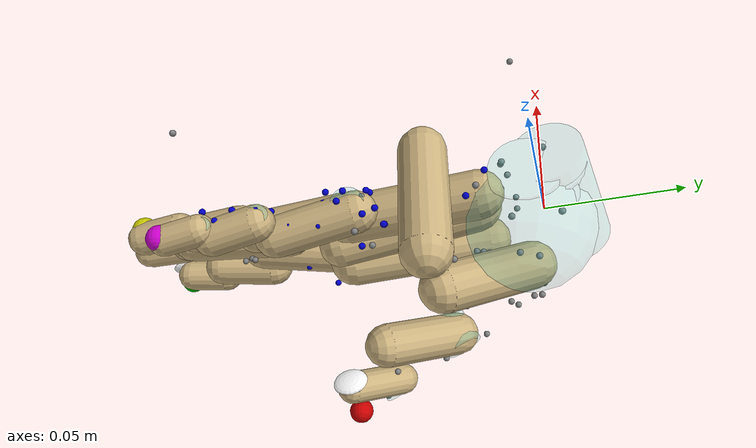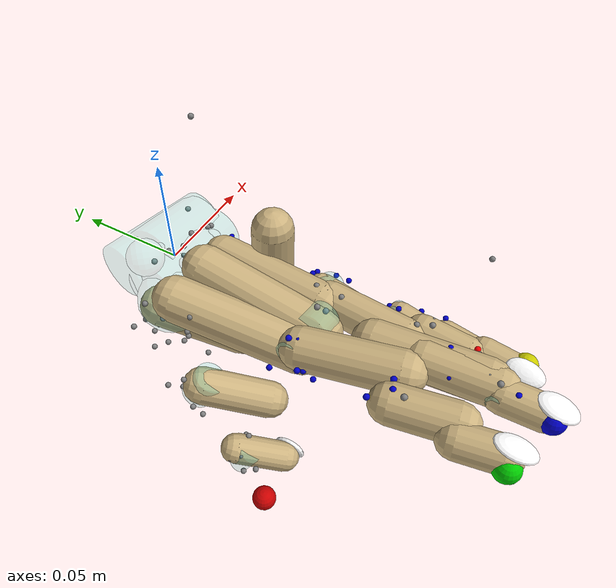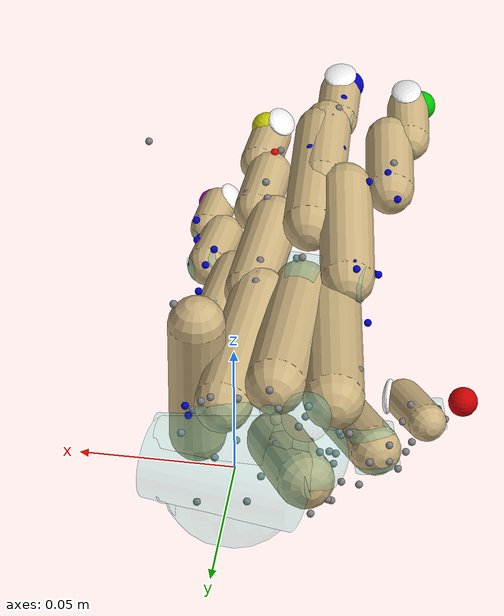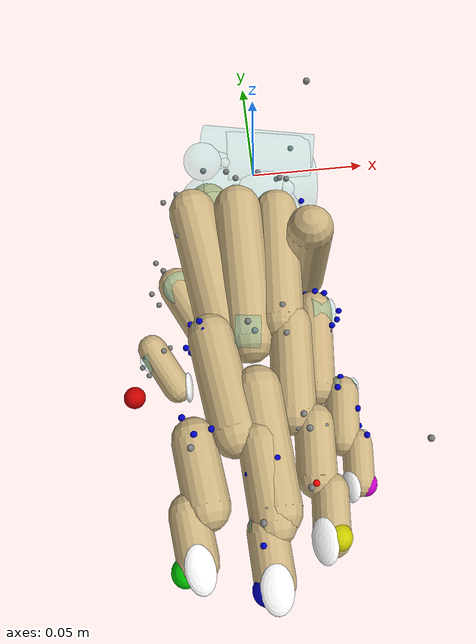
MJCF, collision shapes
<mujoco>
      <compiler inertiafromgeom="auto" angle="radian" balanceinertia="true" boundmass="0.001" boundinertia=".0001" meshdir=".." texturedir=".."/>
  <size njmax="1000" nconmax="400" nuser_jnt="1"/>
  <option timestep="0.002"/>

  <visual>
    <headlight diffuse="1 1 1"/>
    <scale actuatorwidth=".075"/>
  </visual>

    <default class="main">
        <geom contype="0" conaffinity="0"/>
        <tendon rgba="0.95 0.3 0.3 41" width="0.001"/>
        <default class="arm_arm">
            <joint limited="true" damping="1.05" armature="1e-4" stiffness="0"/>
            <geom margin="0.001" rgba="0.8 0.8 0.8 1" contype="0" conaffinity="0"/>
            <site size="0.00125" group="2"/>
            <tendon rgba="0.95 0.3 0.3 41" width="0.003"/>
            <default class="muscle_arm">
                <general biasprm="0.75 1.05 -1 200 0.5 1.6 1.5 1.3 1.2 0" biastype="muscle" ctrllimited="true" ctrlrange="0 1" dynprm="0.01 0.04 0 0 0 0 0 0 0 0" dyntype="muscle" gainprm="0.75 1.05 -1 200 0.5 1.6 1.5 1.3 1.2 0" gaintype="muscle"/>
            </default>
            <default class="myohand_coll_arm">
                <geom type="capsule" group="4" contype="1" conaffinity="0" condim="3" rgba="0.8 0.7 .5 1" margin="0.001" material="MatSkin"/>
            </default>
            <default class="myoarm_coll_arm">
                <geom type="capsule" group="4" contype="1" conaffinity="0" condim="3" rgba="0.8 0.7 .5 1" margin="0.001" material="MatSkin"/>
            </default>
            <default class="wrap_arm">
                <geom group="3" rgba="0.19 0.83 0.78 0.2"/>
            </default>
            <default class="marker_arm">
                 <site rgba="1 0.1 0.5 0.5" size="0.001" group="4"/>
            </default>
        </default>
        <default class="upperarm_muscle_arm">
            <general biasprm="0.75 1.05 -1 200 0.5 1.6 1.5 1.3 1.2 0" biastype="muscle" ctrllimited="true" ctrlrange="0 1" dynprm="0.01 0.04 0 0 0 0 0 0 0 0" dyntype="muscle" gainprm="0.75 1.05 -1 200 0.5 1.6 1.5 1.3 1.2 0" gaintype="muscle"/>
            <tendon rgba="0.95 0.3 0.3 41" width="0.007"/>
        </default>
        <default class="forearm_muscle_arm">
            <muscle ctrllimited="true" ctrlrange="0 1" />
            <tendon rgba="0.95 0.3 0.3 41" width="0.002"/>
        </default>
        <default class="elbow_arm">
            <joint limited="true" damping="0.75" armature="1e-4" stiffness="0"/>
            <geom margin="0.001" rgba="0.8 0.8 0.8 1" contype="0" conaffinity="0"/>
            <site size="0.00125" group="2"/>
            <tendon rgba="0.95 0.3 0.3 41" width="0.002"/>
        </default>
        <default class="wrist_arm">
            <joint limited="true" damping=".05" armature="1e-4" stiffness="0"/>
            <geom margin="0.001" rgba="0.8 0.8 0.8 1" contype="0" conaffinity="0"/>
            <site size="0.00125" group="2"/>
            <tendon rgba="0.95 0.3 0.3 41" width="0.002"/>
        </default>
        <default class="fingers_arm">
            <joint limited="true" damping=".05" armature="1e-4" stiffness="0"/>
            <geom margin="0.001" rgba="0.8 0.8 0.8 1" contype="0" conaffinity="0"/>
            <site size="0.00125" group="2"/>
        </default>
    </default>

    <compiler meshdir=".." texturedir=".."/>

    <asset>

        <mesh file="../myo_sim/flippedmeshesblender/scapulaL.stl" name="scapleft"/>
        <mesh file="../myo_sim/flippedmeshesblender/clavicleL.stl" name="clavleft"/>
        <mesh file="../myo_sim/flippedmeshesblender/humerusL.stl" name="humeleft"/>
        <mesh file="../myo_sim/flippedmeshesblender/ulnaL.stl" name="ulnaleft"/>
        <mesh file="../myo_sim/flippedmeshesblender/radiusL.stl" name="radiusleft"/>
        <mesh file="../myo_sim/flippedmeshesblender/lunateL.stl" name="lunaleft"/>
        <mesh file="../myo_sim/flippedmeshesblender/scaphoidL.stl" name="scaphoid"/>
        <mesh file="../myo_sim/flippedmeshesblender/pisiformL.stl" name="pisiform"/>
        <mesh file="../myo_sim/flippedmeshesblender/triquetrumL.stl" name="triquetrum"/>
        <mesh file="../myo_sim/flippedmeshesblender/capitateL.stl" name="capitate"/>
        <mesh file="../myo_sim/flippedmeshesblender/trapeziumL.stl" name="trapezium"/>
        <mesh file="../myo_sim/flippedmeshesblender/1mcL.stl" name="1mc"/>
        <mesh file="../myo_sim/flippedmeshesblender/thumbproxL.stl" name="thumbprox"/>
        <mesh file="../myo_sim/flippedmeshesblender/thumbdistL.stl" name="thumbdist"/>
        <mesh file="../myo_sim/flippedmeshesblender/trapezoidL.stl" name="trapezoid"/>
        <mesh file="../myo_sim/flippedmeshesblender/hamateL.stl" name="hamate"/>

        <mesh file="../myo_sim/flippedmeshesblender/2mcL.stl" name="2mc"/>
        <mesh file="../myo_sim/flippedmeshesblender/2proxphL.stl" name="2proxph"/>
        <mesh file="../myo_sim/flippedmeshesblender/2midphL.stl" name="2midph"/>
        <mesh file="../myo_sim/flippedmeshesblender/2distphL.stl" name="2distph"/>

        <mesh file="../myo_sim/flippedmeshesblender/3mcL.stl" name="3mc"/>
        <mesh file="../myo_sim/flippedmeshesblender/3proxphL.stl" name="3proxph"/>
        <mesh file="../myo_sim/flippedmeshesblender/3midphL.stl" name="3midph"/>
        <mesh file="../myo_sim/flippedmeshesblender/3distphL.stl" name="3distph"/>

        <mesh file="../myo_sim/flippedmeshesblender/5mcL.stl" name="5mc"/>
        <mesh file="../myo_sim/flippedmeshesblender/5distphL.stl" name="5distph"/>
        <mesh file="../myo_sim/flippedmeshesblender/5proxphL.stl" name="5proxph"/>
        <mesh file="../myo_sim/flippedmeshesblender/5midphL.stl" name="5midph"/>

        <mesh file="../myo_sim/flippedmeshesblender/4mcL.stl" name="4mc"/>
        <mesh file="../myo_sim/flippedmeshesblender/4proxphL.stl" name="4proxph"/>
        <mesh file="../myo_sim/flippedmeshesblender/4midphL.stl" name="4midph"/>
        <mesh file="../myo_sim/flippedmeshesblender/4distphL.stl" name="4distph"/>

        <material name="MatSkin" specular="0.2" shininess=".1" reflectance="0.5" rgba="0.9 .7 .5 1"/>
    </asset>

<worldbody>
                                        <body name="lunate" pos="0 0 0" childclass="wrist_arm">
                                            <joint axis="0 0 1" name="deviation" pos="0 0 0" range="-0.174533 0.436332" damping="0.25"/>
                                            <joint axis="1 0 0" name="flexion" pos="0 0 0" range="-0.785398 0.785398" damping="0.25"/>
                                            <geom mesh="lunaleft" name="lunate" type="mesh"/>

                                            <geom name="WristExtensor_wrap" pos="-0.0007 0 0.003" quat="0.807649 -0.0333177 -0.588355 0.0207694" class="wrap_arm" size="0.008 0.02" type="cylinder"/>
                                            <geom name="WristFlexor_wrap" pos="0 0.005 -0.004" quat="0.807649 -0.0333177 -0.588355 0.0207694" class="wrap_arm" size="0.007 0.02" type="cylinder"/>
                                            <geom name="ExtensorEllipse_ellipsoid_wrap" pos="0.00145969 -0.0060009 -0.00892632" quat="0.977473 -0.106567 0.15459 0.0963907" class="wrap_arm" size="0.0237409"/>
                                            <geom name="FDS_ellipsoid_wrap" type="cylinder" size="0.013 0.025" pos="0.0012 -0.0057 -0.0003" euler="0.00837758 -1.48 -0.0171042" class="wrap_arm"/>
                                            <geom name="FDP_ellipsoid_wrap" type="cylinder" size="0.013 0.025" pos="0.0022 0.0069 0.0032" euler="-1.46747 -1.37 0.121824" class="wrap_arm"/>
                                            <geom name="EDM_ellipsoid_wrap" type="cylinder" size="0.014 0.018" pos="0.005335 0.0022 0.0048" euler="2.9627 -1.73 0.117984" class="wrap_arm"/>
                                            <geom name="FPL_ellipsoid_wrap" type="sphere" size="0.015" pos="-0.02 -0.0125 -0.0033" class="wrap_arm"/>
                                            <geom name="ECRL_torus_wrap" pos="-0.0222 -0.0048 0.0208" quat="0.637339 0.675155 0.168467 0.331034" class="wrap_arm" size="0.008"/>
                                            <geom name="ECRB_torus_wrap" pos="-0.0126 -0.00475 0.0186" quat="0.78744 0.610837 0.011177 -0.0818018" class="wrap_arm" size="0.002"/>
                                            <geom name="FCR_torus_wrap" pos="-0.0032 -0.00225 -0.019" quat="0.71204 -0.696183 0.0894345 0.0181554" class="wrap_arm" size="0.0015"/>

                                            <geom name="EDCL_torus_wrap" pos="0.0128 -0.0133 0.0074" quat="0.386237 0.907673 -0.159784 0.037683" class="wrap_arm" size="0.004"/>
                                            <geom name="EDCR_torus_wrap" pos="0.0098 -0.0137 0.0083" quat="0.516906 0.814718 0.18962 0.1819" class="wrap_arm" size="0.003"/>
                                            <geom name="EDCM_torus_wrap" pos="0.0007 -0.0117 0.0096" quat="0.516192 0.831214 0.100219 0.180516" class="wrap_arm" size="0.0035"/>
                                            <geom name="EDCI_torus_wrap" pos="-0.009 -0.0149 0.0106" quat="0.660055 0.749868 -0.0267535 0.0361877" class="wrap_arm" size="0.0035"/>
                                            <site name="ExtensorEllipse_ellipsoid_site_EIP_side" pos="0.0195105 -0.00430577 0.0636576"/>
                                            <site name="PL_ellipsoid_site_PL_side" pos="-0.0286005 -0.023546 -0.0168168"/>

                                            <site name="FDS_ellipsoid_site_FDS5_side" pos="0.00481002 -0.034454 -0.0213554"/>
                                            <site name="FDS_ellipsoid_site_FDS4_side" pos="0.00481002 -0.034454 -0.0213554" />
                                            <site name="FDS_ellipsoid_site_FDS3_side" pos="0.00481002 -0.034454 -0.0213554" />
                                            <site name="FDS_ellipsoid_site_FDS2_side" pos="0.00481002 -0.034454 -0.0213554" />

                                            <site name="FDP_ellipsoid_site_FDP5_side" pos="0.00481002 -0.034454 -0.0213554"/>
                                            <site name="FDP_ellipsoid_site_FDP4_side" pos="0.00481002 -0.034454 -0.0213554"/>
                                            <site name="FDP_ellipsoid_site_FDP3_side" pos="0.00481002 -0.034454 -0.0213554"/>
                                            <site name="FDP_ellipsoid_site_FDP2_side" pos="0.00481002 -0.034454 -0.0213554"/>
                                            <site name="EDM_ellipsoid_site_EDM_side" pos="0.0167 0.0022 0.015"/>
                                            <site name="FPL_ellipsoid_site_FPL_side" pos="-0.017 -0.025 -0.0033"/>
                                            <site name="ECRL_torus_site_ECRL_side" pos="-0.0222 -0.0096 0.0208"/>
                                            <site name="ECRB_torus_site_ECRB_side" pos="-0.0126 -0.0095 0.0186"/>
                                            <site name="FCR_torus_site_FCR_side" pos="-0.0032 -0.0045 -0.019"/>

                                            <site name="EDCL_torus_site_EDC5_side" pos="0.0128 -0.0133 0.0148"/>
                                            <site name="EDCR_torus_site_EDC4_side" pos="0.0098 -0.0137 0.0166"/>
                                            <site name="EDCM_torus_site_EDC3_side" pos="0.0007 -0.0117 0.0191"/>
                                            <site name="EDCI_torus_site_EDC2_side" pos="-0.009 -0.0149 0.0211"/> -->
                                            <body name="scaphoid" pos="-0.01 0.004464 -0.001254">
                                                <geom mesh="scaphoid" name="scaphoid" type="mesh"/>
                                                <inertial pos="0 0 0" mass="0.02" fullinertia="0.0001 0.0001 0.0001 0 0 0"/>
                                            </body>
                                            <body name="pisiform" pos="0.0125 0.002 -0.002">
                                                <geom mesh="pisiform" name="pisiform" type="mesh"/>
                                                <inertial pos="0 0 0" mass="0.02" fullinertia="0.0001 0.0001 0.0001 0 0 0"/>
                                                <site name="FCU-P4" pos="-0.001 0.003 -0.01"/>
                                            </body>
                                            <body name="triquetrum" pos="0.008 -0.01 -0.001289">
                                                <geom mesh="triquetrum" name="triquetrum" type="mesh"/>
                                                <inertial pos="0 0 0" mass="0.02" fullinertia="0.0001 0.0001 0.0001 0 0 0"/>
                                            </body>
                                            <body name="capitate" pos="-0.01075 -0.012099 0.002327" childclass="fingers_arm">
                                                <geom mesh="capitate" name="capitate" type="mesh"/>
                                                <site name="PL-P3" pos="-0.0092 -0.019 -0.0175"/>
                                                <site name="FDS5-P3" pos="0.0024 -0.0139 -0.0138"/>
                                                <site name="FDS4-P3" pos="0.0008 -0.0134 -0.0136"/>
                                                <site name="FDS3-P3" pos="-0.0068 -0.0138 -0.014"/>
                                                <site name="FDS2-P3" pos="-0.0089 -0.0137 -0.0139"/>
                                                <site name="FDP5-P3" pos="0.0009 -0.0103 -0.0119"/>
                                                <site name="FDP4-P3" pos="-0.0011 -0.0118 -0.0118"/>
                                                <site name="FDP3-P3" pos="-0.0034 -0.0128 -0.0114"/>
                                                <site name="FDP2-P3" pos="-0.009 -0.0117 -0.0121"/>
                                                <site name="EPL-P6" pos="-0.0243 0.0001 0.0061"/>
                                                <site name="EPB-P5" pos="-0.0312 0.0026 -0.0033"/>
                                                <site name="FPL-P5" pos="-0.0187 0.0088 -0.0155"></site>
                                                <body name="trapezium" pos="-0.007 0.006 -0.012">
                                                    <geom mesh="trapezium" name="trapezium" type="mesh"/>
                                                    <inertial pos="0 0 0" mass="0.02" fullinertia="0.0001 0.0001 0.0001 0 0 0"/>
                                                    <geom name="Trpzm_wrap" pos="0.002 -0.003 0" quat="0.708942 0.660448 0.181023 0.16864" class="wrap_arm" size="0.011"/>
                                                    <site name="EPL-P7" pos="-0.0081 -0.0046 0.0099"/>
                                                    <site name="OP-P1" pos="0.011 -0.005 -0.004"/>
                                                    <site name="Trpzm_site_FPL_side" pos="-0.0125474 -0.0222585 0.00136571"/>
                                                    <site name="Trpzm_site_OP_side" pos="-0.0125474 -0.0222585 0.00136571"/>
                                                    <site name="S_grasp" pos="0.011 -0.06 -0.03" size=".01" group="3"/>
                                                    <camera name="plam_lookat" pos="-0.011 -0.06 -0.5" euler="0 3.14 0"/>

                                                    <!-- THUMB FINGER -->
                                                    <body name="firstmc" pos="-0.006 -0.005 -0.0025">
                                                        <joint axis="-0.042399 -0.665286 0.745384" name="cmc_abduction" pos="0 0 0" range="-0.5 0.78"/>
                                                        <joint axis="0.495557 0.731736 0.467959"  name="cmc_flexion" pos="0 0 0" range="-0.78 0.7"/>
                                                        <geom name="1mcskin" class="myohand_coll_arm" size="0.0095" fromto=".002 0.004 0.003 0.0165 -0.0292 -0.0127"/>
                                                        <geom mesh="1mc" name="1mc" type="mesh"/>
                                                        <geom name="MPthumb_wrap" type="cylinder" size="0.0075 0.007" pos="-0.016 -0.03 -0.0125" euler="0.5 0.25 0" class="wrap_arm"/>
                                                        <inertial pos="0.0078 -0.0147 -0.006" mass="0.016" fullinertia="1.2e-06 7.1e-07 1.3e-06 4.7e-07 2.5e-07 -4.1e-07"/>
                                                        <site name="EPL-P8" pos="-0.0066 -0.0043 0.0079"/>
                                                        <site name="EPL-P9" pos="-0.0216 -0.0242 -0.0053"/>
                                                        <site name="EPB-P6" pos="-0.0144 -0.0034 -0.004"/>
                                                        <site name="EPB-P7" pos="-0.0217 -0.023 -0.0114"/>
                                                        <site name="FPL-P7" pos="0.0061 -0.0162 -0.0094"></site>
                                                        <site name="FPL-P8" pos="-0.0021 -0.023 -0.0096"></site>
                                                        <site name="APL-P6" pos="-0 0.006 -0.01"></site>
                                                        <site name="APL-P7" pos="-0.0063 0.0032 -0.0059"></site>
                                                        <site name="APL-P8" pos="-0.0083 -0.0059 -0.006"></site>
                                                        <site name="OP-P2" pos="-0.011 -0.03 -0.016"/>
                                                        <site name="MPthumb_site_EPB_side" pos="-0.0252901 -0.0179637 -0.00935966" />
                                                        <site name="MPthumb_site_FPL_side" pos="-0.0177 -0.0305 -0.0143"/>
                                                        <body name="proximal_thumb" pos="-0.0165 -0.0292 -0.0127">
                                                            <joint axis="-0.084295 -0.203488 0.975442" name="mp_flexion" pos="0 0 0" range="-0.785398 0.698132"/>
                                                            <geom class="myohand_coll_arm" size="0.0085" fromto="0 0 0 0.014 -0.0259 -0.0101"/>
                                                            <geom mesh="thumbprox" name="thumbprox" type="mesh"/>
                                                            <geom name="IPthumb_wrap" type="cylinder" size="0.0045 0.005" pos="-0.015 -0.031 -0.0118" euler="0.5 0.25 0" class="wrap_arm"/>
                                                            <inertial pos="0.0096 -0.0163 -0.0063" mass="0.0079" fullinertia="2.6e-07 7.1e-07 2.9e-07 1e-07 4e-08 -6e-08"/>

                                                            <site name="EPL-P10" pos="-0.0115 -0.0036 0.0016"/>
                                                            <site name="EPL-P11" pos="-0.0192 -0.0265 -0.0104"/>
                                                            <site name="EPB-P8" pos="-0.0093 -0.0062 -0.0056"/>

                                                            <site name="FPL-P9" pos="0.0045 -0.0184 -0.0051"></site>
                                                            <site name="FPL-P10" pos="-0.0059 -0.026 -0.0111"/>
                                                            <site name="IPthumb_site_EPL_side" pos="-0.0167862 -0.030399 -0.0079041"/>
                                                            <site name="IPthumb_site_FPL_side" pos="-0.00820158 -0.028993 -0.00586527"/>

                                                            <body name="distal_thumb" pos="-0.014 -0.0259 -0.0101">
                                                                <geom class="myohand_coll_arm" size="0.0065" fromto="0 0 0 0.010 -0.018 -0.007"/>
                                                                <joint axis="-0.050102 -0.479623 0.876043" name="ip_flexion" pos="0 0 0" range="-1.309 0.436332"/>
                                                                <geom mesh="thumbdist" name="thumbdist" type="mesh"/>
                                                                <inertial pos="0.0056 -0.0104 -0.0044" mass="0.003" fullinertia="5e-08 3e-08 5e-08 1e-08 1e-08 -1e-08"/>

                                                                <site name="EPL-P12" pos="-0.0054 -0.0071 -0.0046"/>
                                                                <site name="FPL-P11" pos="-0.0024 -0.0113 -0.0041"/>

                                                                <geom class="myohand_coll_arm" type="ellipsoid" size=".007 .0055 .002" pos=".015 -.018 -.007" euler="0.2 1.57 1.5" rgba="1 1 1 .8"/>
                                                                <site name="THtip" size="0.005" pos="-0.010 -.020 -.008" rgba=".8 0 0 1"/>
                                                            </body>
                                                        </body>
                                                    </body>
                                                </body>
                                                <body name="trapezoid" pos="-0.009 -0.0055 -0.002464">
                                                    <geom mesh="trapezoid" name="trapezoid" type="mesh"/>
                                                    <inertial pos="0 0 0" mass="0.02" fullinertia="0.0001 0.0001 0.0001 0 0 0"/>
                                                </body>
                                                <body name="hamate" pos="0.010969 -0.002495 -0.00075">
                                                    <geom mesh="hamate" name="hamate" type="mesh"/>
                                                    <site name="APL_torus_site_APL_side" pos="0.0082 0.0023 -0.0101"/>
                                                    <inertial pos="0 0 0" mass="0.02" fullinertia="0.0001 0.0001 0.0001 0 0 0"/>
                                                </body>
                                                <body name="secondmc" pos="-0.0135 -0.039 0.005032">
                                                    <geom name="2mcskin" class="myohand_coll_arm" size="0.010 0.028" euler="-1.42 -0.15 .1"/>
                                                    <geom mesh="2mc" name="2mc" type="mesh"/>
                                                    <geom name="2ndmcp_ellipsoid_wrap" type="cylinder" size="0.0065 0.005" pos="-0.002 -0.0285 0.005" euler="-1.6 -1.44967048 2.91" class="wrap_arm"/>
                                                    <inertial pos="0 0 0" mass="0.02" fullinertia="0.0001 0.0001 0.0001 0 0 0"/>

                                                    <site name="ECRL-P4" pos="-0.0025 0.0164 0.0008" rgba="0 0 0.8 1"></site>
                                                    <site name="FCR-P3" pos="-0.0034 0.0192 -0.0092"></site>
                                                    <site name="FDS2-P4" pos="0.0041 -0.0002 -0.0048" rgba="0 0 0.8 1"></site>
                                                    <site name="FDS2-P5" pos="0.0049 -0.0138 -0.0007" rgba="0 0 0.8 1"  ></site>
                                                    <site name="FDP2-P4" pos="-0.0043 0.0066 -0.0025"></site>
                                                    <site name="FDP2-P5" pos="0.0041 -0.016 -0.0042"></site>
                                                    <site name="EDC2-P4" pos="-0.0031 -0.0295 0.0124" rgba="0 0 0.8 1"></site>
                                                    <site name="EIP-P4" pos="-0.0108 0.0153 0.0068"></site>
                                                    <site name="EIP-P5" pos="-0.0044 -0.026 0.0128" rgba="0 0 0.8 1"></site>
                                                    <site name="RI2-P1" pos="-0.0041 -0.0002 -0.0048"></site>
                                                    <site name="RI2-P2" pos="-0.0091 -0.02 -0.0049" rgba="0 0 0.8 1"></site>
                                                    <site name="LU_RB2-P1" pos="-0.0041 -0.0002 -0.0048"></site>
                                                    <site name="LU_RB2-P2" pos="0.0102 -0.0265 -0" ></site>
                                                    <site name="UI_UB2-P1" pos="-0.0041 -0.0002 -0.0048"></site>
                                                    <site name="UI_UB2-P2" pos="-0.0033 -0.0294 -0.0001"></site>
                                                    <site name="2ndmcp_ellipsoid_site_FDS2_side" pos="0 0 0"/>
                                                    <site name="2ndmcp_ellipsoid_site_FDP2_side" pos="0.0058 -0.0294 -0.0087"/>
                                                    <site name="2ndmcp_ellipsoid_site_EDC2_side" pos="0.0058 -0.0294 0.0087"/>
                                                    <site name="2ndmcp_ellipsoid_site_EIP_side" pos="-0.0058 -0.0294 0.0087" rgba="0 0 0.8 1"/>
                                                    <site name="2ndmcp_ellipsoid_site_RI2_side" pos="-0.0107522 -0.0332733 0.00473501" rgba="0 0 0.8 1"/>
                                                    <body name="proxph2" pos="-0.0020 -0.028243 0.00362">
                                                        <joint axis="0.995013 0 0" name="mcp2_flexion" pos="0 0 0" range="0 1.5708"/>
                                                        <joint axis="-0.054999 0.085899 0.994785"  name="mcp2_abduction" pos="0 0 0" range="-0.261799 0.261799"/>
                                                        <geom class="myohand_coll_arm" size="0.009 0.020" pos="0.004 -0.0210 0.00362" euler="1.45 0.15 -.35"/>
                                                        <geom mesh="2proxph" name="2proxph" type="mesh"/>
                                                        <geom name="Secondpm_wrap" type="cylinder" size="0.0042 0.005" pos="-0.007 -0.0425 0.007" euler="-1.6 -1.45 2.91" class="wrap_arm"/>
                                                        <inertial pos="0 0 0" mass="0.01" fullinertia="0.0001 0.0001 0.0001 0 0 0"/>
                                                        <site name="FDS2-P6" pos="-0.0013 -0.0084 -0.012"  rgba="0 0 0.8 1"></site>
                                                        <site name="FDS2-P7" pos="-0.0064 -0.0368 0.0023"  rgba="0 0 0.8 1"></site>
                                                        <site name="FDP2-P6" pos="0.0033 -0.0202 -0.005"  rgba="0 0 0.8 1"></site>
                                                        <site name="FDP2-P7" pos="0.0063 -0.0343 -0.0006"></site>
                                                        <site name="EDC2-P5" pos="0.002 -0.01 0.007" rgba="0 0 0.8 1"></site>
                                                        <site name="EDC2-P6" pos="0.007 -0.038 0.012"></site>
                                                        <site name="EIP-P6" pos="0.0017 -0.0103 0.0095" rgba="0 0 0.8 1"></site>
                                                        <site name="EIP-P7" pos="-0.0071 -0.0413 0.0141" rgba="0 0 0.8 1"></site>
                                                        <site name="RI2-P3" pos="-0.007 -0.0067 -0.0001" rgba="0 0 0.8 1"></site>
                                                        <site name="LU_RB2-P3" pos="0.0084 -0.0083 -0" rgba="0 0 0.8 1"></site>
                                                        <site name="LU_RB2-P4" pos="-0.0113 -0.0339 0.0094" rgba="0 0 0.8 1"></site>
                                                        <site name="UI_UB2-P3" pos="-0.0043 -0.0159 0.0024"></site>
                                                        <site name="UI_UB2-P4" pos="-0.001 -0.0394 0.0111" rgba="0 0 0.8 1"></site>
                                                        <site name="Secondpm_site_EDC2_side" pos="0.0075 -0.0407 0.0121"/>
                                                        <site name="Secondpm_site_EIP_side" pos="0.00869283 -0.0401863 0.0131834"/>
                                                        <site name="Secondpm_site_LU_RB2_side" pos="0.075 -0.0507 0.01"/>
                                                        <site name="Secondpm_site_UI_UB2_side" pos="0.0147187 -0.0418367 0.0110691"/>
                                                        <body name="midph2" pos="-0.00751 -0.041273 0.007326">
                                                            <geom class="myohand_coll_arm" size="0.008 0.012" pos="0.0013 -0.012 0.00" euler="1.5 0.14 -.35"/>
                                                            <joint axis="0.97517 0.0998334 -0.197677" name="pm2_flexion" pos="0 0 0" range="0 1.5708"/>
                                                            <geom mesh="2midph" name="2midph" type="mesh"/>
                                                            <geom name="Secondmd_wrap" pos="-0.0035 -0.025 0.00125" euler="-1.6 -1.45 2.91" class="wrap_arm" size="0.003 0.005" type="cylinder"/>
                                                            <inertial pos="0 0 0" mass="0.003" fullinertia="0.0001 0.0001 0.0001 0 0 0"/>
                                                            <site name="EIP-P8" pos="0.0012 -0.009 0.006"/>
                                                            <site name="EIP-P9" pos="0.004 -0.026 0.004"/>
                                                            <site name="FDS2-P8" pos="-0.0002 -0.0088 -0.0041"></site>
                                                            <site name="FDP2-P8" pos="0.0006 -0.0088 -0.0058"></site>
                                                            <site name="FDP2-P9" pos="0.0043 -0.0196 -0.0035"></site>
                                                            <site name="EDC2-P7" pos="-0.0009 -0.0046 0.0074"/>
                                                            <site name="EDC2-P8" pos="0.003 -0.0249 0.0048"/>
                                                            <site name="LU_RB2-P5" pos="0.006 -0.008 0.001"></site>
                                                            <site name="LU_RB2-P6" pos="0.006 -0.021 0.002"></site>
                                                            <site name="UI_UB2-P5" pos="-0.0041 -0.0066 0.0038"></site>
                                                            <site name="UI_UB2-P6" pos="0.001 -0.023 0.003"></site>
                                                            <site name="Secondmd_site_EDC2_side" pos="0.00435202 -0.0234011 0.00618443"/>
                                                            <site name="Secondmd_site_EIP_side" pos="0.00435202 -0.0234011 0.00618443"/>
                                                            <body name="distph2" pos="-0.003333 -0.024888 0.00122">
                                                                <joint axis="0.995004 0.0998334 0" name="md2_flexion" pos="0 0 0" range="0 1.5708"/>
                                                                <geom class="myohand_coll_arm" size="0.007 0.008" pos="0.001 -0.008 0.00" euler="1.5 0.14 -.35"/>
                                                                <geom mesh="2distph" name="2distph" type="mesh"/>
                                                                <inertial pos="0 0 0" mass="0.002" fullinertia="0.0001 0.0001 0.0001 0 0 0"/>
                                                                <site name="FDP2-P10" pos="0.0007 -0.0056 -0.004"/>
                                                                <site name="EDC2-P9" pos="0 -0.0056 0.0034"/>
                                                                <site name="EIP-P10" pos="0.001 -0.004 0.003"/>
                                                                <site name="EIP-P11" pos="0.0026 -0.0123 0.0027"/>
                                                                <geom class="myohand_coll_arm" type="ellipsoid" size=".005 .008 .002" pos=".003 -.018 0.0055" euler="0.2 0.1 0.15" rgba="1 1 1 .8"/>
                                                                <site name="IFtip" size="0.005" pos="-.002 -.018 -.00" rgba="0 0.8 0 1"/>
                                                            </body>
                                                        </body>
                                                    </body>
                                                </body>
                                                <!-- MIDDLE FINGER -->
                                                <body name="thirdmc" pos="0.001 -0.041 0.007377">
                                                    <geom name="3mcskin" class="myohand_coll_arm" size="0.010 0.028" euler="-1.42 0.01 0"/>
                                                    <geom mesh="3mc" name="3mc" type="mesh"/>
                                                    <geom name="3rdmcp_ellipsoid_wrap" type="cylinder" size="0.0065 0.005" pos="-0.001 -0.0275 0.0035" euler="-1.2 -1.45 2.91" class="wrap_arm"/>

                                                    <inertial pos="0 0 0" mass="0.02" fullinertia="0.0001 0.0001 0.0001 0 0 0"/>

                                                    <site name="ECRB-P4" pos="0.0045 0.0279 0.0011"/>
                                                    <site name="PL-P4" pos="0.0018 0.0083 -0.0024"/>
                                                    <site name="FDS4-P4" pos="-0.0091 0.0054 -0.0108"/>
                                                    <site name="FDS3-P4" pos="0.0013 0.0064 -0.0095"/>
                                                    <site name="FDS3-P5" pos="0.0024 -0.0244 -0.0104"/>
                                                    <site name="FDP4-P4" pos="-0.0104 0.0047 -0.008"/>
                                                    <site name="FDP3-P4" pos="-0.0013 0.0061 -0.0084"/>
                                                    <site name="FDP3-P5" pos="0.0019 -0.0151 -0.0068"></site>
                                                    <site name="EDC3-P4" pos="-0.0007 -0.0263 0.0112"/>
                                                    <site name="RI3-P1" pos="0.0013 0.0064 -0.0095"/>
                                                    <site name="RI3-P2" pos="0.0096 -0.0027 -0.0048"/>
                                                    <site name="LU_RB3-P1" pos="0.0013 0.0064 -0.0095"/>
                                                    <site name="LU_RB3-P2" pos="0.0102 -0.0232 -0.0008"></site>
                                                    <site name="UI_UB3-P1" pos="0.0013 0.0064 -0.0095"/>
                                                    <site name="UI_UB3-P2" pos="-0.0031 -0.0248 -0.0034"></site>
                                                    <site name="RI4-P1" pos="-0.0091 0.0054 -0.0108"/>
                                                    <site name="LU_RB4-P1" pos="-0.0091 0.0054 -0.0108"/>
                                                    <site name="UI_UB4-P1" pos="-0.0091 0.0054 -0.0108"/>
                                                    <site name="RI5-P1" pos="-0.0091 0.0054 -0.0108"/>
                                                    <site name="LU_RB5-P1" pos="-0.0091 0.0254 -0.0108"/>
                                                    <site name="UI_UB5-P1" pos="-0.0201 0.0254 -0.0158"/>
                                                    <site name="3rdmcp_ellipsoid_site_FDS3_side" pos="0.0015 -0.025 0.002"/>
                                                    <site name="3rdmcp_ellipsoid_site_FDP3_side" pos="0.0015 -0.025 0.002"/>
                                                    <site name="3rdmcp_ellipsoid_site_EDC3_side" pos="0.0016 -0.0291 0.0081"/>
                                                    <site name="3rdmcp_ellipsoid_site_LU_RB3_side" pos="0 0 0"/>
                                                    <body name="proxph3" pos="0.00024 -0.050689 0.001778">
                                                        <joint axis="1 0 -0.198669" name="mcp3_flexion" pos="0 0.024 0" range="0 1.5708"/>
                                                        <joint axis="-0.198669 0 0.980067" name="mcp3_abduction" pos="0 0 0" range="-0.261799 0.261799"/>
                                                        <geom class="myohand_coll_arm" size="0.009 0.022" pos="0.001 -0.022 0.004" euler="1.5 0.045 -.35"/>
                                                        <geom mesh="3proxph" name="3proxph" type="mesh"/>
                                                        <geom name="Thirdpm_wrap" type="cylinder" size="0.004 0.005" pos="-0.002 -0.02 0.00655" euler="-1.6 -1.45 0" class="wrap_arm"/>
                                                        <inertial pos="0 0 0" mass="0.01" fullinertia="0.0001 0.0001 0.0001 0 0 0"/>
                                                        <site name="FDS3-P6" pos="0.0006 -0.0146 -0.0088"></site>
                                                        <site name="FDS3-P7" pos="0.0045 -0.0376 -0.0021"></site>
                                                        <site name="FDP3-P6" pos="0.0007 -0.0158 -0.0081"></site>
                                                        <site name="FDP3-P7" pos="0.0024 -0.0364 -0.0005"></site>
                                                        <site name="EDC3-P5" pos="-0.0012 -0.0122 0.0107"></site>
                                                        <site name="EDC3-P6" pos="0.0017 -0.0414 0.0113"></site>
                                                        <site name="RI3-P3" pos="0.0076 -0.0117 0.0005"></site>
                                                        <site name="LU_RB3-P3" pos="-0.0068 -0.022 0.0073"></site>
                                                        <site name="LU_RB3-P4" pos="0.0058 -0.0447 0.0076"></site>
                                                        <site name="UI_UB3-P3" pos="0.0012 -0.0183 -0.0093"></site>
                                                        <site name="UI_UB3-P4" pos="-0.0043 -0.0428 0.0069"></site>
                                                        <site name="Thirdpm_site_EDC3_side" pos="0.00155575 -0.04355 0.012991"/>
                                                        <site name="Thirdpm_site_LU_RB3_side" pos="-0.00155575 -0.04355 0.012991"/>
                                                        <site name="Thirdpm_site_UI_UB3_side" pos="-0.00155575 -0.04355 0.012991"/>
                                                        <body name="midph3" pos="-0.00165 -0.019911 0.00623">
                                                            <joint axis="1 0 0" name="pm3_flexion" pos="0 0 0" range="0 1.5708"/>
                                                            <geom class="myohand_coll_arm" size="0.008 0.014" pos="0.0012 -0.014 0.00" euler="1.55 0.06 -.35"/>
                                                            <geom mesh="3midph" name="3midph" type="mesh"/>
                                                            <inertial pos="0 0 0" mass="0.002" fullinertia="0.0001 0.0001 0.0001 0 0 0"/>
                                                            <geom name="Thirdmd_wrap" pos="-0.0014 -0.0289 0.0012" euler="-1.6 -1.45 2.91" class="wrap_arm" size="0.003 0.005" type="cylinder"/>
                                                            <site name="FDS3-P8" pos="-0.0002 -0.0107 -0.0054" ></site>
                                                            <site name="FDP3-P8" pos="-0.0016 -0.0115 -0.0051"></site>
                                                            <site name="FDP3-P9" pos="-0.0021 -0.0214 -0.0021" ></site>
                                                            <site name="EDC3-P7" pos="-0.0004 -0.0042 0.0062" rgba="0 0 0.8 1"></site>

                                                            <site name="EDC3-P8" pos="-0.0011 -0.029 0.0051" ></site>

                                                            <site name="LU_RB3-P5" pos="-0.0049 -0.0116 0.0035" rgba="0 0 0.8 1"></site>
                                                            <site name="UI_UB3-P5" pos="0.0054 -0.0077 0.006" rgba="0 0 0.8 1"></site>

                                                            <site name="Thirdmd_site_EDC3_side" pos="-0.00142423 -0.028063 0.00714128"/>
                                                            <body name="distph3" pos="-0.001365 -0.029047 0.001954">
                                                                <joint axis="1 0 0" name="md3_flexion" pos="0 0 0" range="0 1.5708"/>
                                                                <geom class="myohand_coll_arm" size="0.007 0.008" pos="0.0013 -0.009 -.002" euler="1.6 .05 0"/>
                                                                <geom mesh="3distph" name="3distph" type="mesh"/>
                                                                <inertial pos="0 0 0" mass="0.002" fullinertia="0.0001 0.0001 0.0001 0 0 0"/>

                                                                <site name="FDP3-P10" pos="0.0008 -0.004 -0.002"/>

                                                                <site name="EDC3-P9" pos="-0.0008 -0.0058 0.0041" rgba="0 0 0.8 1"/>
                                                                <geom class="myohand_coll_arm" type="ellipsoid" size=".0055 .008 .002" pos="0.002 -.019 0.003" euler="0.2 0 0.0" rgba="1 1 1 .8"/>
                                                                <site name="MFtip" size="0.005" pos="-0.001 -.019 -.001" rgba="0 0 0.8 1"/>
                                                            </body>
                                                        </body>
                                                    </body>
                                                </body>

                                                <!-- RING FINGER -->
                                                <body name="fourthmc" pos="0.015 -0.039 0.003513">
                                                    <geom name="4mcskin" class="myohand_coll_arm" size="0.0095 0.026" euler="1.55 -.08 0" pos=".001 0.002 -.00"/>
                                                    <geom mesh="4mc" name="4mc" type="mesh"/>
                                                    <geom name="4thmcp_ellipsoid_wrap" type="cylinder" size="0.0065 0.005" pos="0.0018 -0.0254 -0.0003" euler="0 2.0 0" class="wrap_arm"/>
                                                    <inertial pos="0 0 0" mass="0.02" fullinertia="0.0001 0.0001 0.0001 0 0 0"/>
                                                    <site name="FDS5-P4" pos="-0.0029 0.0085 -0.0121"></site>
                                                    <site name="FDS4-P5" pos="0.002 -0.0138 -0.006"></site>
                                                    <site name="FDP5-P4" pos="-0.0069 0.0089 -0.0062"></site>
                                                    <site name="FDP4-P5" pos="-0.0006 -0.0136 -0.0063"></site>
                                                    <site name="EDC4-P4" pos="-0.0004 -0.0207 0.0095"></site>
                                                    <site name="RI4-P2" pos="0.0079 -0.0144 -0.0003"></site>
                                                    <site name="LU_RB4-P2" pos="0.0032 -0.0224 -0.0008"></site>
                                                    <site name="UI_UB4-P2" pos="-0.0048 -0.0241 -0.0044"></site>
                                                    <site name="4thmcp_ellipsoid_site_FDS4_side" pos="-0.002 -0.024 0.002"/>
                                                    <site name="4thmcp_ellipsoid_site_FDP4_side" pos="-0.002 -0.024 0.002"/>
                                                    <site name="4thmcp_ellipsoid_site_EDC4_side" pos="-0.0003 -0.0254 0.0083"/>
                                                    <site name="4thmcp_ellipsoid_site_UI_UB4_side" pos="-0.0107758 -0.0261555 -0.00498369"/>

                                                    <body name="proxph4" pos="0.00183 -0.023689 -0.000173">
                                                        <joint axis="0.995013 0.099 -0.36"  name="mcp4_flexion" pos="0 0 0" range="0 1.5708"/>
                                                        <joint axis="0.434966 0 0.900447" name="mcp4_abduction" pos="0 0 0" range="-0.261799 0.261799"/>
                                                        <geom class="myohand_coll_arm" size="0.0085 0.018" pos="-.001 -0.0200 .0008" euler="1.57 -.08 0"/>
                                                        <geom mesh="4proxph" name="4proxph" type="mesh"/>
                                                        <inertial pos="0 0 0" mass="0.01" fullinertia="0.0001 0.0001 0.0001 0 0 0"/>
                                                        <geom name="Fourthpm_wrap" type="cylinder" size="0.00400000 0.005" pos="0.0033 -0.0401 0.0006" euler="-0.02291026 -1.12311937 1.27251956" class="wrap_arm"/>
                                                        <site name="FDS4-P6" pos="0.0001 -0.0127 -0.0075"></site>
                                                        <site name="FDS4-P7" pos="0.0006 -0.0361 -0.001"></site>
                                                        <site name="FDP4-P6" pos="-0.0012 -0.012 -0.0088"></site>
                                                        <site name="FDP4-P7" pos="-0.0034 -0.0332 -0.0019"></site>
                                                        <site name="EDC4-P5" pos="-0.002 -0.0084 0.0088"></site>
                                                        <site name="EDC4-P6" pos="-0.0038 -0.038 0.0048"></site>
                                                        <site name="RI4-P3" pos="0.0031 -0.0243 0.0001"></site>
                                                        <site name="LU_RB4-P3" pos="0.0002 -0.0146 0.0006"></site>
                                                        <site name="LU_RB4-P4" pos="0.0013 -0.0403 0.0041"></site>
                                                        <site name="UI_UB4-P3" pos="-0.0042 -0.0212 -0.0055"></site>
                                                        <site name="UI_UB4-P4" pos="-0.0089 -0.0388 0.0018"></site>
                                                        <site name="Fourthpm_site_EDC4_side" pos="0.00028232 -0.0402561 0.008299"/>
                                                        <site name="Fourthpm_site_UI_UB4_side" pos="-0.0089 -0.0388 0.0018"/>
                                                        <body name="midph4" pos="0.003528 -0.040255 0.001345">
                                                            <joint axis="0.4521061 0 -0.199418" name="pm4_flexion" pos="0 0 0" range="0 1.5708"/>
                                                            <geom class="myohand_coll_arm" size="0.0075 0.01" pos="-.00 -0.012 -.001" euler="1.58 -.08 0"/>
                                                            <geom mesh="4midph" name="4midph" type="mesh"/>
                                                            <geom name="Fourthmd_wrap" type="cylinder" size="0.00300000 0.005" pos="0.0021 -0.0247 -0.0001" euler="-0.02971705 -1.10287355 -2.87211382" class="wrap_arm"/>
                                                            <inertial pos="0 0 0" mass="0.003" fullinertia="0.0001 0.0001 0.0001 0 0 0"/>
                                                            <site name="FDS4-P8" pos="0 -0.0119 -0.0018"></site>
                                                            <site name="FDP4-P8" pos="0.0023 -0.0071 -0.006"></site>
                                                            <site name="FDP4-P9" pos="-0.0007 -0.0197 -0.0013"></site>
                                                            <site name="EDC4-P7" pos="-0.0019 -0.0058 0.0088"></site>
                                                            <site name="EDC4-P8" pos="-0.004 -0.026 0.006"></site>
                                                            <site name="LU_RB4-P5" pos="0.0043 -0.0045 0.0043"></site>
                                                            <site name="UI_UB4-P5" pos="-0.0058 -0.004 0.0034"></site>
                                                            <site name="Fourthmd_site_EDC4_side" pos="-0.0021 -0.0247 0.0061" rgba="1 0 0 1"/>

                                                            <body name="distph4" pos="0.002317 -0.024789 0.000563">
                                                                <joint axis="0.825336 0 -0.564642" name="md4_flexion" pos="0 0 0" range="0 1.5708"/>
                                                                <geom class="myohand_coll_arm" size="0.0068 0.008" pos="0.00 -0.01 -.002" euler="1.6 -.1 0"/>
                                                                <geom mesh="4distph" name="4distph" type="mesh"/>
                                                                <inertial pos="0 0 0" mass="0.002" fullinertia="0.0001 0.0001 0.0001 0 0 0"/>
                                                                <site name="FDP4-P10" pos="0.0002 -0.014 -0.0022"/>
                                                                <site name="EDC4-P9" pos="-0.001 -0.008 0.003"/>
                                                                <geom class="myohand_coll_arm" type="ellipsoid" size=".005 .008 .002" pos="-.004 -.019 0.003" euler="0.2 -.5 0.0" rgba="1 1 1 .8"/>
                                                                <site name="RFtip" size="0.005" pos=".001 -.018 .001" rgba="0.8 0.8 0 1"/>
                                                            </body>
                                                        </body>
                                                    </body>
                                                </body>

                                                <!-- Little Finger -->
                                                <body name="fifthmc" pos="0.0285 -0.032 -0.004218">
                                                    <geom name="5mcskin" class="myohand_coll_arm" size="0.0095 0.024" euler="0 0 0" pos=".001 0.002 -.001"/>
                                                    <geom mesh="5mc" name="5mc" type="mesh"/>
                                                    <geom name="5thmcp_ellipsoid_wrap" type="cylinder" size="0.0065 0.005" pos="0.0018 -0.0254 -0.0009" euler="0 2.0 0" class="wrap_arm"/>
                                                    <inertial pos="0 0 0" mass="0.02" fullinertia="0.0001 0.0001 0.0001 0 0 0"/>
                                                    <site name="ECU-P6" pos="-0.0006 0.0207 0.0029"/>
                                                    <site name="FCU-P5" pos="0.0015 0.017 -0.0033" rgba="0 0 0.8 1"/>
                                                    <site name="FDS5-P5" pos="0.00010445 -0.01308000 -0.00952000" rgba="0 0 0.8 1"/>
                                                    <site name="FDP5-P5" pos="-0.001 -0.013 -0.0087" rgba="0 0 0.8 1"></site>
                                                    <site name="EDC5-P4" pos="0.0013 -0.0182 0.0057" rgba="0 0 0.8 1"></site>
                                                    <site name="EDM-P5" pos="0.0013 0.0244 0.0079" rgba="0 0 0.8 1"/>
                                                    <site name="EDM-P6" pos="0.0054 -0.0185 0.0032" rgba="0 0 0.8 1"/>
                                                    <site name="RI5-P2" pos="0.0061 -0.0149 -0.0066" rgba="0 0 0.8 1"></site>
                                                    <site name="LU_RB5-P2" pos="0.0061 -0.0199 -0.0002"></site>
                                                    <site name="UI_UB5-P2" pos="0.0051 -0.0197 -0.0076" rgba="0 0 0.8 1"></site>
                                                    <site name="5thmcp_ellipsoid_site_FDS5_side" pos="-0.00787277 -0.0230374 -0.0115918"  rgba="0 0 0.8 1"/>
                                                    <site name="5thmcp_ellipsoid_site_FDP5_side" pos="0.0107453 -0.0256233 -0.000443011"  rgba="0 0 0.8 1"/>
                                                    <site name="5thmcp_ellipsoid_site_EDC5_side" pos="0.0101211 -0.0279141 -0.00430677" rgba="0 0 0.8 1"/>
                                                    <site name="5thmcp_ellipsoid_site_LU_RB5_side" pos="-0.00890322 -0.0194098 -0.0110643"/>
                                                    <site name="5thmcp_ellipsoid_site_UI_UB5_side" pos="0.00407413 -0.0225573 -0.0142669"/>
                                                    <body name="proxph5" pos="0.001597 -0.021431 -0.001496">
                                                        <joint axis="0.825336 0 -0.564642"  name="mcp5_flexion" pos="0 0 0" range="0 1.5708"/>
                                                        <joint axis="-0.564642 0 0.825336" name="mcp5_abduction" pos="0 0 0" range="-0.261799 0.261799"/>
                                                        <geom class="myohand_coll_arm" size="0.008 0.016" pos="-.003 -0.018 -.002" euler="1.68 -.1 0"/>
                                                        <geom mesh="5proxph" name="5proxph" type="mesh"/>
                                                        <geom name="Fifthpm_wrap" pos="0.006 -0.036 -0.003" euler="0.12391026 -1.12311937 1.27251956" class="wrap_arm" size="0.004 0.005" type="cylinder"/>
                                                        <inertial pos="0 0 0" mass="0.005" fullinertia="0.0001 0.0001 0.0001 0 0 0"/>
                                                        <site name="EDM-P7" pos="0.0054 -0.0324 0.0001" rgba="0 0 0.8 1"/>
                                                        <site name="FDS5-P6" pos="0.0017 -0.0149 -0.0071" rgba="0 0 0.8 1"></site>
                                                        <site name="FDS5-P7" pos="0.0025 -0.0259 -0.0054" rgba="0 0 0.8 1"></site>
                                                        <site name="FDP5-P6" pos="-0.001 -0.0137 -0.0051"></site>
                                                        <site name="FDP5-P7" pos="0.0005 -0.0291 -0.008" rgba="0 0 0.8 1"></site>
                                                        <site name="EDC5-P5" pos="0.0045 -0.0123 0.0063" rgba="0 0 0.8 1"></site>
                                                        <site name="EDC5-P6" pos="-0.0079 -0.0322 0.0025"></site>
                                                        <site name="RI5-P3" pos="-0.0047 -0.0143 0.0023" rgba="0 0 0.8 1"></site>
                                                        <site name="LU_RB5-P3" pos="0.0035 -0.0131 0.002" rgba="0 0 0.8 1"></site>
                                                        <site name="LU_RB5-P4" pos="0.0032 -0.0372 0.0031" rgba="0 0 0.8 1"></site>
                                                        <site name="UI_UB5-P3" pos="-0.0031 -0.0177 -0.0079"></site>
                                                        <site name="UI_UB5-P4" pos="-0.0107 -0.0359 -0.0032"></site>

                                                        <site name="Fifthpm_site_EDC5_side" pos="0.0026 -0.0399 -0.0022" rgba="0 0 0.8 1"/>
                                                        <site name="Fifthpm_site_LU_RB5_side" pos="0.0032 -0.0372 0.0031" rgba="0 0 0.8 1"/>
                                                        <site name="Fifthpm_site_UI_UB5_side" pos="0.0107 -0.0359 -0.0032" rgba="0 0 0.8 1"/>

                                                        <body name="midph5" pos="0.005279 -0.035563 -0.002879">
                                                            <joint axis="0.425336 0 -0.282" name="pm5_flexion" pos="0 0 0" range="0 1.5708"/>
                                                            <geom class="myohand_coll_arm" size="0.007 0.009" pos="-.001 -0.011 -.0025" euler="1.68 -.12 0"/>
                                                            <geom mesh="5midph" name="5midph" type="mesh"/>
                                                            <geom name="Fifthmd_wrap" pos="0.0025 -0.0205 -0.0025" euler="0.22291026 -1.12311937 0" class="wrap_arm" size="0.003 0.005" type="cylinder"/>
                                                            <inertial pos="0 0 0" mass="0.002" fullinertia="0.0001 0.0001 0.0001 0 0 0"/>
                                                            <site name="FDS5-P8" pos="0.0011 -0.0182 -0.0046"/>
                                                            <site name="FDP5-P8" pos="-0.001 -0.009 -0.004"/>
                                                            <site name="FDP5-P9" pos="0.001 -0.016 -0.004" rgba="0 0 0.8 1"/>
                                                            <site name="EDC5-P7" pos="0.005 -0.01 0.002" rgba="0 0 0.8 1"/>
                                                            <site name="EDC5-P8" pos="0.005 -0.021 0" rgba="0 0 0.8 1"/>
                                                            <site name="LU_RB5-P5" pos="0.0007 -0.0167 0.0017" rgba="0 0 0.8 1"/>
                                                            <site name="UI_UB5-P5" pos="0.005 -0.016 -0.002" rgba="0 0 0.8 1"/>
                                                            <site name="Fifthmd_site_EDC5_side" pos="0.00694323 -0.0205834 0.00153122" rgba="0 0 0.8 1"/>
                                                            <site name="EDM-P8" pos="-0.002 -0.003 0.003" rgba="0 0 0.8 1"/>

                                                            <body name="distph5" pos="0.002871 -0.020677 -0.002243">
                                                                <joint axis="0.643112 -0.226804 -0.731414" name="md5_flexion" pos="0 0 0" range="0 1.5708"/>
                                                                <geom class="myohand_coll_arm" size="0.006 0.007" pos="-.0002 -0.009 -.002" euler="1.65 -.1 0"/>
                                                                <geom mesh="5distph" name="5distph" type="mesh"/>
                                                                <inertial pos="0 0 0" mass="0.001" fullinertia="0.0001 0.0001 0.0001 0 0 0"></inertial>
                                                                <site name="FDP5-P10" pos="0.0003 -0.0139 -0.0048"/>
                                                                <site name="EDC5-P9" pos="0.002 -0.007 0" rgba="0 0 0.8 1"/>
                                                                <site name="EDM-P9" pos="0.0023 -0.0033 0.0006" rgba="0 0 0.8 1"/>
                                                                <geom class="myohand_coll_arm" type="ellipsoid" size=".0045 .006 .002" pos="-.005 -.018 0.000" euler="0.2 -.8 0.0" rgba="1 1 1 .8"/>
                                                                <site name="LFtip" size="0.005" pos=".001 -.017 -.003" rgba="0.8 0 0.8 1"/>
                                                            </body>
                                                        </body>
                                                    </body>
                                                </body>
                                                </body>
                                            </body>

</worldbody>
</mujoco>
